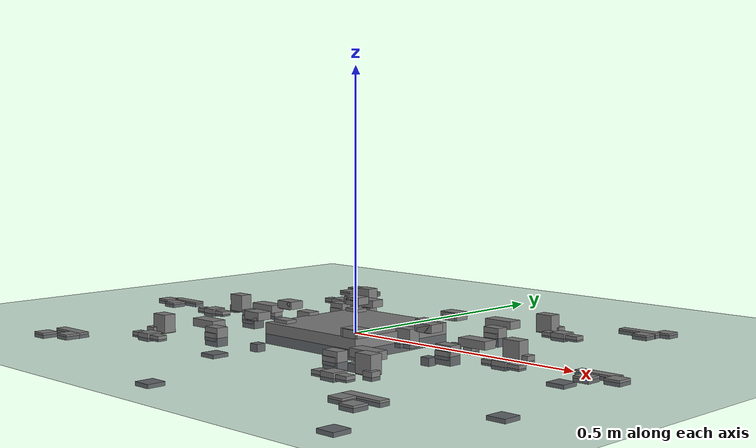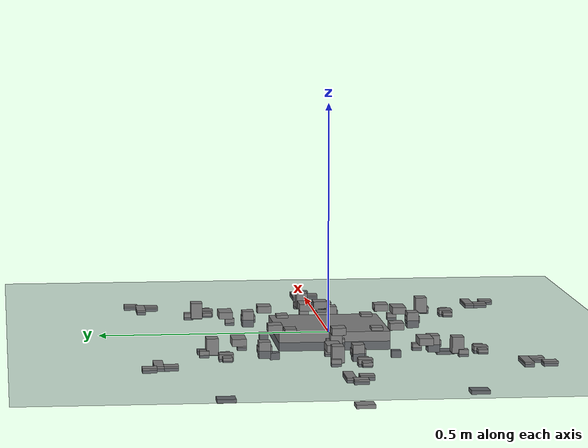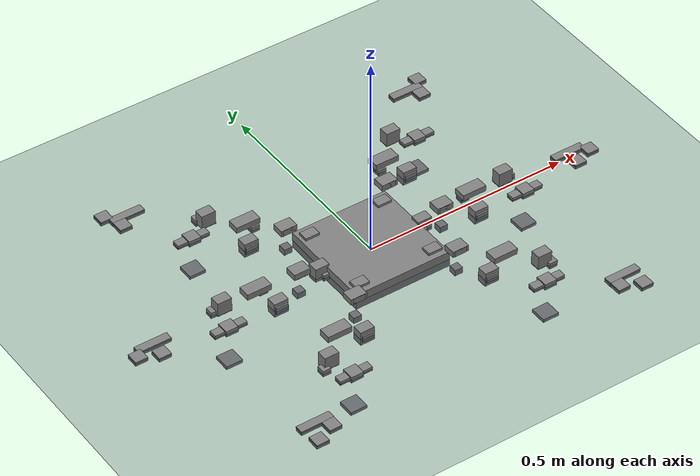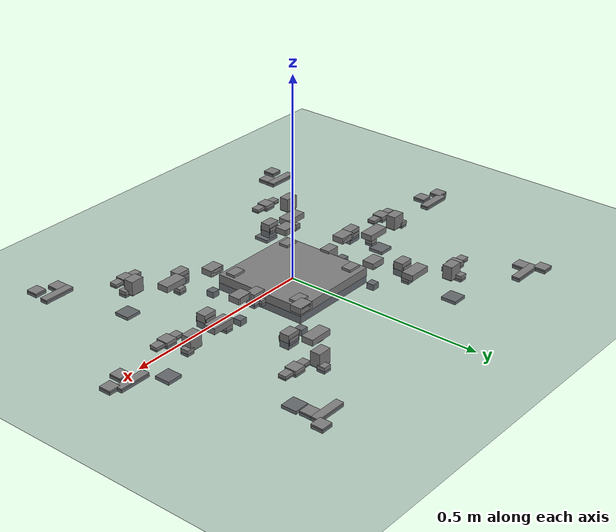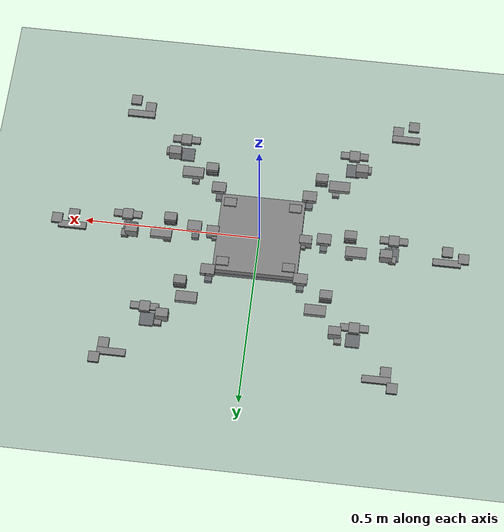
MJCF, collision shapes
<mujoco model="hexapedal_direct">
  <compiler angle="radian" autolimits="true" meshdir="../../../../../../HEXAPEDAL_URDF_description/meshes"/>
  <option timestep="0.008333333333333333" gravity="0 0 -9.81"/>
  <default>
    <default class="visual">
      <geom group="1" rgba="0.7 0.7 0.7 1" contype="0" conaffinity="0"/>
    </default>
    <default class="collision">
      <geom group="0" contype="1" conaffinity="0" friction="1 0.02 0.002" solref="0.005 1" solimp="0.9 0.95 0.001"/>
    </default>
  </default>
  <asset>
    <mesh name="LB_DS51150_270_1_1" file="LB_DS51150_270_1_1.stl" scale="0.001 0.001 0.001"/>
    <mesh name="LB_DS51150_270_2_1" file="LB_DS51150_270_2_1.stl" scale="0.001 0.001 0.001"/>
    <mesh name="LB_DS51150_270_3_1" file="LB_DS51150_270_3_1.stl" scale="0.001 0.001 0.001"/>
    <mesh name="LB_bearing_1_1" file="LB_bearing_1_1.stl" scale="0.001 0.001 0.001"/>
    <mesh name="LB_bearing_2_1" file="LB_bearing_2_1.stl" scale="0.001 0.001 0.001"/>
    <mesh name="LB_bearing_3_1" file="LB_bearing_3_1.stl" scale="0.001 0.001 0.001"/>
    <mesh name="LB_coxaL_1" file="LB_coxaL_1.stl" scale="0.001 0.001 0.001"/>
    <mesh name="LB_flame4_1" file="LB_flame4_1.stl" scale="0.001 0.001 0.001"/>
    <mesh name="LB_foot_1" file="LB_foot_1.stl" scale="0.001 0.001 0.001"/>
    <mesh name="LB_foot_cover_1" file="LB_foot_cover_1.stl" scale="0.001 0.001 0.001"/>
    <mesh name="LB_link1_left_1" file="LB_link1_left_1.stl" scale="0.001 0.001 0.001"/>
    <mesh name="LB_link2_L_back_1" file="LB_link2_L_back_1.stl" scale="0.001 0.001 0.001"/>
    <mesh name="LB_link2_L_front_1" file="LB_link2_L_front_1.stl" scale="0.001 0.001 0.001"/>
    <mesh name="LB_motor_horn_1_1" file="LB_motor_horn_1_1.stl" scale="0.001 0.001 0.001"/>
    <mesh name="LB_motor_horn_2_1" file="LB_motor_horn_2_1.stl" scale="0.001 0.001 0.001"/>
    <mesh name="LB_motor_horn_3_1" file="LB_motor_horn_3_1.stl" scale="0.001 0.001 0.001"/>
    <mesh name="LF_DS51150_270_1_1" file="LF_DS51150_270_1_1.stl" scale="0.001 0.001 0.001"/>
    <mesh name="LF_DS51150_270_2_1" file="LF_DS51150_270_2_1.stl" scale="0.001 0.001 0.001"/>
    <mesh name="LF_DS51150_270_3_1" file="LF_DS51150_270_3_1.stl" scale="0.001 0.001 0.001"/>
    <mesh name="LF_bearing_1_1" file="LF_bearing_1_1.stl" scale="0.001 0.001 0.001"/>
    <mesh name="LF_bearing_2_1" file="LF_bearing_2_1.stl" scale="0.001 0.001 0.001"/>
    <mesh name="LF_bearing_3_1" file="LF_bearing_3_1.stl" scale="0.001 0.001 0.001"/>
    <mesh name="LF_coxaL_1" file="LF_coxaL_1.stl" scale="0.001 0.001 0.001"/>
    <mesh name="LF_flame4_1" file="LF_flame4_1.stl" scale="0.001 0.001 0.001"/>
    <mesh name="LF_foot_1" file="LF_foot_1.stl" scale="0.001 0.001 0.001"/>
    <mesh name="LF_foot_cover_1" file="LF_foot_cover_1.stl" scale="0.001 0.001 0.001"/>
    <mesh name="LF_link1_left_1" file="LF_link1_left_1.stl" scale="0.001 0.001 0.001"/>
    <mesh name="LF_link2_L_back_1" file="LF_link2_L_back_1.stl" scale="0.001 0.001 0.001"/>
    <mesh name="LF_link2_L_front_1" file="LF_link2_L_front_1.stl" scale="0.001 0.001 0.001"/>
    <mesh name="LF_motor_horn_1_1" file="LF_motor_horn_1_1.stl" scale="0.001 0.001 0.001"/>
    <mesh name="LF_motor_horn_2_1" file="LF_motor_horn_2_1.stl" scale="0.001 0.001 0.001"/>
    <mesh name="LF_motor_horn_3_1" file="LF_motor_horn_3_1.stl" scale="0.001 0.001 0.001"/>
    <mesh name="LM_DS51150_270_1_1" file="LM_DS51150_270_1_1.stl" scale="0.001 0.001 0.001"/>
    <mesh name="LM_DS51150_270_2_1" file="LM_DS51150_270_2_1.stl" scale="0.001 0.001 0.001"/>
    <mesh name="LM_DS51150_270_3_1" file="LM_DS51150_270_3_1.stl" scale="0.001 0.001 0.001"/>
    <mesh name="LM_bearing_1_1" file="LM_bearing_1_1.stl" scale="0.001 0.001 0.001"/>
    <mesh name="LM_bearing_2_1" file="LM_bearing_2_1.stl" scale="0.001 0.001 0.001"/>
    <mesh name="LM_bearing_3_1" file="LM_bearing_3_1.stl" scale="0.001 0.001 0.001"/>
    <mesh name="LM_coxaL_1" file="LM_coxaL_1.stl" scale="0.001 0.001 0.001"/>
    <mesh name="LM_flame4_1" file="LM_flame4_1.stl" scale="0.001 0.001 0.001"/>
    <mesh name="LM_foot_1" file="LM_foot_1.stl" scale="0.001 0.001 0.001"/>
    <mesh name="LM_foot_cover_1" file="LM_foot_cover_1.stl" scale="0.001 0.001 0.001"/>
    <mesh name="LM_link1_left_1" file="LM_link1_left_1.stl" scale="0.001 0.001 0.001"/>
    <mesh name="LM_link2_L_back_1" file="LM_link2_L_back_1.stl" scale="0.001 0.001 0.001"/>
    <mesh name="LM_link2_L_front_1" file="LM_link2_L_front_1.stl" scale="0.001 0.001 0.001"/>
    <mesh name="LM_motor_horn_1_1" file="LM_motor_horn_1_1.stl" scale="0.001 0.001 0.001"/>
    <mesh name="LM_motor_horn_2_1" file="LM_motor_horn_2_1.stl" scale="0.001 0.001 0.001"/>
    <mesh name="LM_motor_horn_3_1" file="LM_motor_horn_3_1.stl" scale="0.001 0.001 0.001"/>
    <mesh name="RB_DS51150_270_1_1" file="RB_DS51150_270_1_1.stl" scale="0.001 0.001 0.001"/>
    <mesh name="RB_DS51150_270_2_1" file="RB_DS51150_270_2_1.stl" scale="0.001 0.001 0.001"/>
    <mesh name="RB_DS51150_270_3_1" file="RB_DS51150_270_3_1.stl" scale="0.001 0.001 0.001"/>
    <mesh name="RB_bearing_1_1" file="RB_bearing_1_1.stl" scale="0.001 0.001 0.001"/>
    <mesh name="RB_bearing_2_1" file="RB_bearing_2_1.stl" scale="0.001 0.001 0.001"/>
    <mesh name="RB_bearing_3_1" file="RB_bearing_3_1.stl" scale="0.001 0.001 0.001"/>
    <mesh name="RB_coxaR_1" file="RB_coxaR_1.stl" scale="0.001 0.001 0.001"/>
    <mesh name="RB_flame4_1" file="RB_flame4_1.stl" scale="0.001 0.001 0.001"/>
    <mesh name="RB_foot_1" file="RB_foot_1.stl" scale="0.001 0.001 0.001"/>
    <mesh name="RB_foot_cover_1" file="RB_foot_cover_1.stl" scale="0.001 0.001 0.001"/>
    <mesh name="RB_link1_right_1" file="RB_link1_right_1.stl" scale="0.001 0.001 0.001"/>
    <mesh name="RB_link2_R_back_1" file="RB_link2_R_back_1.stl" scale="0.001 0.001 0.001"/>
    <mesh name="RB_link2_R_front_1" file="RB_link2_R_front_1.stl" scale="0.001 0.001 0.001"/>
    <mesh name="RB_motor_horn_1_1" file="RB_motor_horn_1_1.stl" scale="0.001 0.001 0.001"/>
    <mesh name="RB_motor_horn_2_1" file="RB_motor_horn_2_1.stl" scale="0.001 0.001 0.001"/>
    <mesh name="RB_motor_horn_3_1" file="RB_motor_horn_3_1.stl" scale="0.001 0.001 0.001"/>
    <mesh name="RF_DS51150_270_1_1" file="RF_DS51150_270_1_1.stl" scale="0.001 0.001 0.001"/>
    <mesh name="RF_DS51150_270_2_1" file="RF_DS51150_270_2_1.stl" scale="0.001 0.001 0.001"/>
    <mesh name="RF_DS51150_270_3_1" file="RF_DS51150_270_3_1.stl" scale="0.001 0.001 0.001"/>
    <mesh name="RF_bearing_1_1" file="RF_bearing_1_1.stl" scale="0.001 0.001 0.001"/>
    <mesh name="RF_bearing_2_1" file="RF_bearing_2_1.stl" scale="0.001 0.001 0.001"/>
    <mesh name="RF_bearing_3_1" file="RF_bearing_3_1.stl" scale="0.001 0.001 0.001"/>
    <mesh name="RF_coxaR_1" file="RF_coxaR_1.stl" scale="0.001 0.001 0.001"/>
    <mesh name="RF_flame4_1" file="RF_flame4_1.stl" scale="0.001 0.001 0.001"/>
    <mesh name="RF_foot_1" file="RF_foot_1.stl" scale="0.001 0.001 0.001"/>
    <mesh name="RF_foot_cover_1" file="RF_foot_cover_1.stl" scale="0.001 0.001 0.001"/>
    <mesh name="RF_link1_right_1" file="RF_link1_right_1.stl" scale="0.001 0.001 0.001"/>
    <mesh name="RF_link2_R_back_1" file="RF_link2_R_back_1.stl" scale="0.001 0.001 0.001"/>
    <mesh name="RF_link2_R_front_1" file="RF_link2_R_front_1.stl" scale="0.001 0.001 0.001"/>
    <mesh name="RF_motor_horn_1_1" file="RF_motor_horn_1_1.stl" scale="0.001 0.001 0.001"/>
    <mesh name="RF_motor_horn_2_1" file="RF_motor_horn_2_1.stl" scale="0.001 0.001 0.001"/>
    <mesh name="RF_motor_horn_3_1" file="RF_motor_horn_3_1.stl" scale="0.001 0.001 0.001"/>
    <mesh name="RM_DS51150_270_1_1" file="RM_DS51150_270_1_1.stl" scale="0.001 0.001 0.001"/>
    <mesh name="RM_DS51150_270_2_1" file="RM_DS51150_270_2_1.stl" scale="0.001 0.001 0.001"/>
    <mesh name="RM_DS51150_270_3_1" file="RM_DS51150_270_3_1.stl" scale="0.001 0.001 0.001"/>
    <mesh name="RM_bearing_1_1" file="RM_bearing_1_1.stl" scale="0.001 0.001 0.001"/>
    <mesh name="RM_bearing_2_1" file="RM_bearing_2_1.stl" scale="0.001 0.001 0.001"/>
    <mesh name="RM_bearing_3_1" file="RM_bearing_3_1.stl" scale="0.001 0.001 0.001"/>
    <mesh name="RM_coxaR_1" file="RM_coxaR_1.stl" scale="0.001 0.001 0.001"/>
    <mesh name="RM_flame4_1" file="RM_flame4_1.stl" scale="0.001 0.001 0.001"/>
    <mesh name="RM_foot_1" file="RM_foot_1.stl" scale="0.001 0.001 0.001"/>
    <mesh name="RM_foot_cover_1" file="RM_foot_cover_1.stl" scale="0.001 0.001 0.001"/>
    <mesh name="RM_link1_right_1" file="RM_link1_right_1.stl" scale="0.001 0.001 0.001"/>
    <mesh name="RM_link2_R_back_1" file="RM_link2_R_back_1.stl" scale="0.001 0.001 0.001"/>
    <mesh name="RM_link2_R_front_1" file="RM_link2_R_front_1.stl" scale="0.001 0.001 0.001"/>
    <mesh name="RM_motor_horn_1_1" file="RM_motor_horn_1_1.stl" scale="0.001 0.001 0.001"/>
    <mesh name="RM_motor_horn_2_1" file="RM_motor_horn_2_1.stl" scale="0.001 0.001 0.001"/>
    <mesh name="RM_motor_horn_3_1" file="RM_motor_horn_3_1.stl" scale="0.001 0.001 0.001"/>
    <mesh name="base_link" file="base_link.stl" scale="0.001 0.001 0.001"/>
  </asset>
  <worldbody>
    <geom name="ground" type="plane" size="5 5 0.1" pos="0 0 0" rgba="0.2 0.25 0.3 1" contype="0" conaffinity="1" friction="1 0.02 0.002"/>
    <body name="base_link">
      <freejoint name="base_freejoint"/>
      <inertial pos="-0.000718538520775 -0.00160985665191 -0.00905082819163" mass="3.73732395734" fullinertia="0.0206092447058 0.0334168391593 0.049450959874 4.26368750144e-05 -2.5241949875e-05 -0.000248451211296"/>
      <geom name="base_link_visual_0" pos="0 0 0" quat="1 0 0 0" class="visual" contype="0" conaffinity="0" user="0 0 0 0" type="mesh" mesh="base_link"/>
      <geom name="RB_flame4_1_visual_0" pos="0 0 0" quat="1 0 0 0" class="visual" contype="0" conaffinity="0" user="0 0 0 0" type="mesh" mesh="RB_flame4_1"/>
      <geom name="RM_flame4_1_visual_0" pos="0 0 0" quat="1 0 0 0" class="visual" contype="0" conaffinity="0" user="0 0 0 0" type="mesh" mesh="RM_flame4_1"/>
      <geom name="RF_flame4_1_visual_0" pos="0 0 0" quat="1 0 0 0" class="visual" contype="0" conaffinity="0" user="0 0 0 0" type="mesh" mesh="RF_flame4_1"/>
      <geom name="LB_flame4_1_visual_0" pos="0 0 0" quat="1 0 0 0" class="visual" contype="0" conaffinity="0" user="0 0 0 0" type="mesh" mesh="LB_flame4_1"/>
      <geom name="LM_flame4_1_visual_0" pos="0 0 0" quat="1 0 0 0" class="visual" contype="0" conaffinity="0" user="0 0 0 0" type="mesh" mesh="LM_flame4_1"/>
      <geom name="LF_flame4_1_visual_0" pos="0 0 0" quat="1 0 0 0" class="visual" contype="0" conaffinity="0" user="0 0 0 0" type="mesh" mesh="LF_flame4_1"/>
      <geom name="RF_DS51150_270_1_1_visual_0" pos="0 0 0" quat="1 0 0 0" class="visual" contype="0" conaffinity="0" user="0 0 0 0" type="mesh" mesh="RF_DS51150_270_1_1"/>
      <geom name="RM_DS51150_270_1_1_visual_0" pos="0 0 0" quat="1 0 0 0" class="visual" contype="0" conaffinity="0" user="0 0 0 0" type="mesh" mesh="RM_DS51150_270_1_1"/>
      <geom name="RB_DS51150_270_1_1_visual_0" pos="0 0 0" quat="1 0 0 0" class="visual" contype="0" conaffinity="0" user="0 0 0 0" type="mesh" mesh="RB_DS51150_270_1_1"/>
      <geom name="LF_DS51150_270_1_1_visual_0" pos="0 0 0" quat="1 0 0 0" class="visual" contype="0" conaffinity="0" user="0 0 0 0" type="mesh" mesh="LF_DS51150_270_1_1"/>
      <geom name="LM_DS51150_270_1_1_visual_0" pos="0 0 0" quat="1 0 0 0" class="visual" contype="0" conaffinity="0" user="0 0 0 0" type="mesh" mesh="LM_DS51150_270_1_1"/>
      <geom name="LB_DS51150_270_1_1_visual_0" pos="0 0 0" quat="1 0 0 0" class="visual" contype="0" conaffinity="0" user="0 0 0 0" type="mesh" mesh="LB_DS51150_270_1_1"/>
      <geom name="RF_bearing_1_1_visual_0" pos="0 0 0" quat="1 0 0 0" class="visual" contype="0" conaffinity="0" user="0 0 0 0" type="mesh" mesh="RF_bearing_1_1"/>
      <geom name="RM_bearing_1_1_visual_0" pos="0 0 0" quat="1 0 0 0" class="visual" contype="0" conaffinity="0" user="0 0 0 0" type="mesh" mesh="RM_bearing_1_1"/>
      <geom name="RB_bearing_1_1_visual_0" pos="0 0 0" quat="1 0 0 0" class="visual" contype="0" conaffinity="0" user="0 0 0 0" type="mesh" mesh="RB_bearing_1_1"/>
      <geom name="LF_bearing_1_1_visual_0" pos="0 0 0" quat="1 0 0 0" class="visual" contype="0" conaffinity="0" user="0 0 0 0" type="mesh" mesh="LF_bearing_1_1"/>
      <geom name="LM_bearing_1_1_visual_0" pos="0 0 0" quat="1 0 0 0" class="visual" contype="0" conaffinity="0" user="0 0 0 0" type="mesh" mesh="LM_bearing_1_1"/>
      <geom name="LB_bearing_1_1_visual_0" pos="0 0 0" quat="1 0 0 0" class="visual" contype="0" conaffinity="0" user="0 0 0 0" type="mesh" mesh="LB_bearing_1_1"/>
      <geom name="base_link_collision_0" pos="0 0 0" quat="1 0 0 0" class="collision" user="0 0 0 0" type="box" size="0.12 0.12 0.02"/>
      <geom name="RB_flame4_1_collision_0" pos="-0.08061 0.08061 -0.0008" quat="1 0 0 0" class="collision" user="0 0 0 0" type="box" size="0.02 0.02 0.0075"/>
      <geom name="RM_flame4_1_collision_0" pos="-0.114 0 -0.0008" quat="1 0 0 0" class="collision" user="0 0 0 0" type="box" size="0.02 0.02 0.0075"/>
      <geom name="RF_flame4_1_collision_0" pos="-0.08061 -0.08061 -0.0008" quat="1 0 0 0" class="collision" user="0 0 0 0" type="box" size="0.02 0.02 0.0075"/>
      <geom name="LB_flame4_1_collision_0" pos="0.08061 0.08061 -0.0008" quat="1 0 0 0" class="collision" user="0 0 0 0" type="box" size="0.02 0.02 0.0075"/>
      <geom name="LM_flame4_1_collision_0" pos="0.114 0 -0.0008" quat="1 0 0 0" class="collision" user="0 0 0 0" type="box" size="0.02 0.02 0.0075"/>
      <geom name="LF_flame4_1_collision_0" pos="0.08061 -0.08061 -0.0008" quat="1 0 0 0" class="collision" user="0 0 0 0" type="box" size="0.02 0.02 0.0075"/>
      <geom name="RF_DS51150_270_1_1_collision_0" pos="-0.093692 -0.093692 0.0087" quat="1 0 0 0" class="collision" user="0 0 0 0" type="box" size="0.0175 0.0125 0.0175"/>
      <geom name="RM_DS51150_270_1_1_collision_0" pos="-0.1325 0 0.0087" quat="1 0 0 0" class="collision" user="0 0 0 0" type="box" size="0.0175 0.0125 0.0175"/>
      <geom name="RB_DS51150_270_1_1_collision_0" pos="-0.093692 0.093692 0.0087" quat="1 0 0 0" class="collision" user="0 0 0 0" type="box" size="0.0175 0.0125 0.0175"/>
      <geom name="LF_DS51150_270_1_1_collision_0" pos="0.093692 -0.093692 0.0087" quat="1 0 0 0" class="collision" user="0 0 0 0" type="box" size="0.0175 0.0125 0.0175"/>
      <geom name="LM_DS51150_270_1_1_collision_0" pos="0.1325 0 0.0087" quat="1 0 0 0" class="collision" user="0 0 0 0" type="box" size="0.0175 0.0125 0.0175"/>
      <geom name="LB_DS51150_270_1_1_collision_0" pos="0.093692 0.093692 0.0087" quat="1 0 0 0" class="collision" user="0 0 0 0" type="box" size="0.0175 0.0125 0.0175"/>
      <geom name="RF_bearing_1_1_collision_0" pos="-0.130461 -0.130461 -0.0273" quat="1 0 0 0" class="collision" user="0 0 0 0" type="box" size="0.01 0.01 0.0075"/>
      <geom name="RM_bearing_1_1_collision_0" pos="-0.1845 0 -0.0273" quat="1 0 0 0" class="collision" user="0 0 0 0" type="box" size="0.01 0.01 0.0075"/>
      <geom name="RB_bearing_1_1_collision_0" pos="-0.130461 0.130461 -0.0273" quat="1 0 0 0" class="collision" user="0 0 0 0" type="box" size="0.01 0.01 0.0075"/>
      <geom name="LF_bearing_1_1_collision_0" pos="0.130461 -0.130461 -0.0273" quat="1 0 0 0" class="collision" user="0 0 0 0" type="box" size="0.01 0.01 0.0075"/>
      <geom name="LM_bearing_1_1_collision_0" pos="0.1845 0 -0.0273" quat="1 0 0 0" class="collision" user="0 0 0 0" type="box" size="0.01 0.01 0.0075"/>
      <geom name="LB_bearing_1_1_collision_0" pos="0.130461 0.130461 -0.0273" quat="1 0 0 0" class="collision" user="0 0 0 0" type="box" size="0.01 0.01 0.0075"/>
      <body name="LF_motor_horn_1_1" pos="0.130461 -0.130461 0.0329" quat="1 0 0 0">
        <joint name="LF_motor_horn_1_joint" type="hinge" pos="0 0 0" axis="0 0 1" range="-2.356194 2.356194" damping="4"/>
        <inertial pos="0.0260163309548 -0.026309974271 -0.0326923635108" mass="0.0976609194815" fullinertia="0.000122658968933 0.000121229345123 0.000133279116024 1.08349590809e-05 5.74959366541e-07 -5.5725781057e-07"/>
        <geom name="LF_motor_horn_1_1_visual_0" pos="-0.130461 0.130461 -0.0329" quat="1 0 0 0" class="visual" contype="0" conaffinity="0" user="0 0 0 0" type="mesh" mesh="LF_motor_horn_1_1"/>
        <geom name="LF_coxaL_1_visual_0" pos="-0.130461 0.130461 -0.0329" quat="1 0 0 0" class="visual" contype="0" conaffinity="0" user="0 0 0 0" type="mesh" mesh="LF_coxaL_1"/>
        <geom name="LF_motor_horn_2_1_visual_0" pos="-0.130461 0.130461 -0.0329" quat="1 0 0 0" class="visual" contype="0" conaffinity="0" user="0 0 0 0" type="mesh" mesh="LF_motor_horn_2_1"/>
        <geom name="LF_motor_horn_1_1_collision_0" pos="0 0 0" quat="1 0 0 0" class="collision" user="0 0 0 0" type="box" size="0.015 0.015 0.0075"/>
        <geom name="LF_coxaL_1_collision_0" pos="0 0 0.0009" quat="1 0 0 0" class="collision" user="0 0 0 0" type="box" size="0.02 0.015 0.0075"/>
        <geom name="LF_motor_horn_2_1_collision_0" pos="0.028426 -0.076226 -0.0329" quat="1 0 0 0" class="collision" user="0 0 0 0" type="box" size="0.015 0.015 0.0075"/>
        <body name="LF_DS51150_270_2_1" pos="0.029062 -0.07559 -0.0329" quat="1 0 0 0">
          <joint name="LF_motor_horn_2_joint" type="hinge" pos="0 0 0" axis="0.707107 0.707107 0" range="-2.356194 2.356194" damping="4"/>
          <inertial pos="0.0674972028066 -0.020216950011 -8.19104568374e-05" mass="0.390433459243" fullinertia="0.000501369998707 0.000501853582839 0.000935189860172 0.000381188642323 -7.4412909612e-07 -7.43970256454e-07"/>
          <geom name="LF_DS51150_270_2_1_visual_0" pos="-0.159523 0.206051 0" quat="1 0 0 0" class="visual" contype="0" conaffinity="0" user="0 0 0 0" type="mesh" mesh="LF_DS51150_270_2_1"/>
          <geom name="LF_link1_left_1_visual_0" pos="-0.159523 0.206051 0" quat="1 0 0 0" class="visual" contype="0" conaffinity="0" user="0 0 0 0" type="mesh" mesh="LF_link1_left_1"/>
          <geom name="LF_DS51150_270_3_1_visual_0" pos="-0.159523 0.206051 0" quat="1 0 0 0" class="visual" contype="0" conaffinity="0" user="0 0 0 0" type="mesh" mesh="LF_DS51150_270_3_1"/>
          <geom name="LF_bearing_2_1_visual_0" pos="-0.159523 0.206051 0" quat="1 0 0 0" class="visual" contype="0" conaffinity="0" user="0 0 0 0" type="mesh" mesh="LF_bearing_2_1"/>
          <geom name="LF_bearing_3_1_visual_0" pos="-0.159523 0.206051 0" quat="1 0 0 0" class="visual" contype="0" conaffinity="0" user="0 0 0 0" type="mesh" mesh="LF_bearing_3_1"/>
          <geom name="LF_DS51150_270_2_1_collision_0" pos="0 0 0" quat="1 0 0 0" class="collision" user="0 0 0 0" type="box" size="0.0175 0.0125 0.0175"/>
          <geom name="LF_link1_left_1_collision_0" pos="0.052821 0.025244 0.015" quat="1 0 0 0" class="collision" user="0 0 0 0" type="box" size="0.03 0.015 0.0075"/>
          <geom name="LF_DS51150_270_3_1_collision_0" pos="0.112925 -0.03486 0.015" quat="1 0 0 0" class="collision" user="0 0 0 0" type="box" size="0.0175 0.0125 0.0175"/>
          <geom name="LF_bearing_2_1_collision_0" pos="0.043982 0.041154 0" quat="1 0 0 0" class="collision" user="0 0 0 0" type="box" size="0.01 0.01 0.0075"/>
          <geom name="LF_bearing_3_1_collision_0" pos="0.130249 -0.045113 0" quat="1 0 0 0" class="collision" user="0 0 0 0" type="box" size="0.01 0.01 0.0075"/>
          <body name="LF_motor_horn_3_1" pos="0.087682 -0.087681 0" quat="1 0 0 0">
            <joint name="LF_motor_horn_3_joint" type="hinge" pos="0 0 0" axis="-0.707107 -0.707107 0" range="-2.356194 2.356194" damping="4"/>
            <inertial pos="0.103357682294 -0.0572709357978 -0.00176243363339" mass="0.12783362378" fullinertia="0.000327801385847 0.000333883441315 0.000620247670026 0.000253565814459 7.99685260537e-06 -7.91898329471e-06"/>
            <geom name="LF_motor_horn_3_1_visual_0" pos="-0.247205 0.293732 0" quat="1 0 0 0" class="visual" contype="0" conaffinity="0" user="0 0 0 0" type="mesh" mesh="LF_motor_horn_3_1"/>
            <geom name="LF_link2_L_front_1_visual_0" pos="-0.247205 0.293732 0" quat="1 0 0 0" class="visual" contype="0" conaffinity="0" user="0 0 0 0" type="mesh" mesh="LF_link2_L_front_1"/>
            <geom name="LF_foot_1_visual_0" pos="-0.247205 0.293732 0" quat="1 0 0 0" class="visual" contype="0" conaffinity="0" user="0 0 0 0" type="mesh" mesh="LF_foot_1"/>
            <geom name="LF_foot_cover_1_visual_0" pos="-0.247205 0.293732 0" quat="1 0 0 0" class="visual" contype="0" conaffinity="0" user="0 0 0 0" type="mesh" mesh="LF_foot_cover_1"/>
            <geom name="LF_link2_L_back_1_visual_0" pos="-0.247205 0.293732 0" quat="1 0 0 0" class="visual" contype="0" conaffinity="0" user="0 0 0 0" type="mesh" mesh="LF_link2_L_back_1"/>
            <geom name="LF_motor_horn_3_1_collision_0" pos="0 0 0" quat="1 0 0 0" class="collision" user="0 0 0 0" type="box" size="0.015 0.015 0.0075"/>
            <geom name="LF_link2_L_front_1_collision_0" pos="-0.000637 -0.000637 0" quat="1 0 0 0" class="collision" user="0 0 0 0" type="box" size="0.04 0.01 0.005"/>
            <geom name="LF_foot_1_collision_0" pos="0.120084 -0.097987 -0.003" quat="1 0 0 0" class="collision" user="0 0 0 0" type="box" size="0.015 0.015 0.005"/>
            <geom name="LF_foot_cover_1_collision_0" pos="0.165187 -0.11866 -0.003" quat="1 0 0 0" class="collision" user="0 0 0 0" type="box" size="0.015 0.015 0.005"/>
            <geom name="LF_link2_L_back_1_collision_0" pos="0.144486 -0.073523 -0.003" quat="1 0 0 0" class="collision" user="0 0 0 0" type="box" size="0.04 0.01 0.005"/>
            <site name="LF_motor_horn_3_1_contact_site" pos="0 0 0" quat="1 0 0 0" type="sphere" size="0.003" rgba="0 1 0 1"/>
            <geom name="LF_motor_horn_3_1_stance_pad" pos="0 0 -0.09" quat="1 0 0 0" class="collision" user="0 0 0 0" type="box" size="0.02 0.02 0.004"/>
          </body>
        </body>
      </body>
      <body name="LM_motor_horn_1_1" pos="0.1845 0 0.0329" quat="1 0 0 0">
        <joint name="LM_motor_horn_1_joint" type="hinge" pos="0 0 0" axis="0 0 1" range="-2.356194 2.356194" damping="4"/>
        <inertial pos="0.0370000008203 -0.000207637180164 -0.0326923635108" mass="0.0976609194815" fullinertia="0.000111609197947 0.000133279116109 0.000133279116024 1.2148119051e-06 1.21481200608e-06 1.25168902646e-08"/>
        <geom name="LM_motor_horn_1_1_visual_0" pos="-0.1845 0 -0.0329" quat="1 0 0 0" class="visual" contype="0" conaffinity="0" user="0 0 0 0" type="mesh" mesh="LM_motor_horn_1_1"/>
        <geom name="LM_coxaL_1_visual_0" pos="-0.1845 0 -0.0329" quat="1 0 0 0" class="visual" contype="0" conaffinity="0" user="0 0 0 0" type="mesh" mesh="LM_coxaL_1"/>
        <geom name="LM_motor_horn_2_1_visual_0" pos="-0.1845 0 -0.0329" quat="1 0 0 0" class="visual" contype="0" conaffinity="0" user="0 0 0 0" type="mesh" mesh="LM_motor_horn_2_1"/>
        <geom name="LM_motor_horn_1_1_collision_0" pos="0 0 0" quat="1 0 0 0" class="collision" user="0 0 0 0" type="box" size="0.015 0.015 0.0075"/>
        <geom name="LM_coxaL_1_collision_0" pos="0 0 0.0009" quat="1 0 0 0" class="collision" user="0 0 0 0" type="box" size="0.02 0.015 0.0075"/>
        <geom name="LM_motor_horn_2_1_collision_0" pos="0.074 -0.0338 -0.0329" quat="1 0 0 0" class="collision" user="0 0 0 0" type="box" size="0.015 0.015 0.0075"/>
        <body name="LM_DS51150_270_2_1" pos="0.074 -0.0329 -0.0329" quat="1 0 0 0">
          <joint name="LM_motor_horn_2_joint" type="hinge" pos="0 0 0" axis="0 1 0" range="-2.356194 2.356194" damping="4"/>
          <inertial pos="0.0620231266888 0.0334319230529 -8.19104568388e-05" mass="0.390433459243" fullinertia="0.00012142314845 0.000881800433096 0.000935189860172 -2.41792066175e-07 -1.12316610394e-10 -6.38031580911e-07"/>
          <geom name="LM_DS51150_270_2_1_visual_0" pos="-0.2585 0.0329 0" quat="1 0 0 0" class="visual" contype="0" conaffinity="0" user="0 0 0 0" type="mesh" mesh="LM_DS51150_270_2_1"/>
          <geom name="LM_link1_left_1_visual_0" pos="-0.2585 0.0329 0" quat="1 0 0 0" class="visual" contype="0" conaffinity="0" user="0 0 0 0" type="mesh" mesh="LM_link1_left_1"/>
          <geom name="LM_DS51150_270_3_1_visual_0" pos="-0.2585 0.0329 0" quat="1 0 0 0" class="visual" contype="0" conaffinity="0" user="0 0 0 0" type="mesh" mesh="LM_DS51150_270_3_1"/>
          <geom name="LM_bearing_2_1_visual_0" pos="-0.2585 0.0329 0" quat="1 0 0 0" class="visual" contype="0" conaffinity="0" user="0 0 0 0" type="mesh" mesh="LM_bearing_2_1"/>
          <geom name="LM_bearing_3_1_visual_0" pos="-0.2585 0.0329 0" quat="1 0 0 0" class="visual" contype="0" conaffinity="0" user="0 0 0 0" type="mesh" mesh="LM_bearing_3_1"/>
          <geom name="LM_DS51150_270_2_1_collision_0" pos="0 0 0" quat="1 0 0 0" class="collision" user="0 0 0 0" type="box" size="0.0175 0.0125 0.0175"/>
          <geom name="LM_link1_left_1_collision_0" pos="0.0195 0.0552 0.015" quat="1 0 0 0" class="collision" user="0 0 0 0" type="box" size="0.03 0.015 0.0075"/>
          <geom name="LM_DS51150_270_3_1_collision_0" pos="0.1045 0.0552 0.015" quat="1 0 0 0" class="collision" user="0 0 0 0" type="box" size="0.0175 0.0125 0.0175"/>
          <geom name="LM_bearing_2_1_collision_0" pos="0.002 0.0602 0" quat="1 0 0 0" class="collision" user="0 0 0 0" type="box" size="0.01 0.01 0.0075"/>
          <geom name="LM_bearing_3_1_collision_0" pos="0.124 0.0602 0" quat="1 0 0 0" class="collision" user="0 0 0 0" type="box" size="0.01 0.01 0.0075"/>
          <body name="LM_motor_horn_3_1" pos="0.124 0 0" quat="1 0 0 0">
            <joint name="LM_motor_horn_3_joint" type="hinge" pos="0 0 0" axis="0 -1 0" range="-2.356194 2.356194" damping="4"/>
            <inertial pos="0.113581806 0.0325886937623 -0.00170404252062" mass="0.12783362378" fullinertia="7.97577912338e-05 0.000583889420151 0.000620247670026 -2.54102773399e-06 1.21302712496e-05 5.27376210722e-08"/>
            <geom name="LM_motor_horn_3_1_visual_0" pos="-0.3825 0.0329 0" quat="1 0 0 0" class="visual" contype="0" conaffinity="0" user="0 0 0 0" type="mesh" mesh="LM_motor_horn_3_1"/>
            <geom name="LM_link2_L_front_1_visual_0" pos="-0.3825 0.0329 0" quat="1 0 0 0" class="visual" contype="0" conaffinity="0" user="0 0 0 0" type="mesh" mesh="LM_link2_L_front_1"/>
            <geom name="LM_foot_1_visual_0" pos="-0.3825 0.0329 0" quat="1 0 0 0" class="visual" contype="0" conaffinity="0" user="0 0 0 0" type="mesh" mesh="LM_foot_1"/>
            <geom name="LM_foot_cover_1_visual_0" pos="-0.3825 0.0329 0" quat="1 0 0 0" class="visual" contype="0" conaffinity="0" user="0 0 0 0" type="mesh" mesh="LM_foot_cover_1"/>
            <geom name="LM_link2_L_back_1_visual_0" pos="-0.3825 0.0329 0" quat="1 0 0 0" class="visual" contype="0" conaffinity="0" user="0 0 0 0" type="mesh" mesh="LM_link2_L_back_1"/>
            <geom name="LM_motor_horn_3_1_collision_0" pos="0 0 0" quat="1 0 0 0" class="collision" user="0 0 0 0" type="box" size="0.015 0.015 0.0075"/>
            <geom name="LM_link2_L_front_1_collision_0" pos="0 -0.0009 0" quat="1 0 0 0" class="collision" user="0 0 0 0" type="box" size="0.04 0.01 0.005"/>
            <geom name="LM_foot_1_collision_0" pos="0.1542 0.015625 -0.003" quat="1 0 0 0" class="collision" user="0 0 0 0" type="box" size="0.015 0.015 0.005"/>
            <geom name="LM_foot_cover_1_collision_0" pos="0.200711 0.0329 -0.002696" quat="1 0 0 0" class="collision" user="0 0 0 0" type="box" size="0.015 0.015 0.005"/>
            <geom name="LM_link2_L_back_1_collision_0" pos="0.154156 0.050179 -0.003" quat="1 0 0 0" class="collision" user="0 0 0 0" type="box" size="0.04 0.01 0.005"/>
            <site name="LM_motor_horn_3_1_contact_site" pos="0 0 0" quat="1 0 0 0" type="sphere" size="0.003" rgba="0 1 0 1"/>
            <geom name="LM_motor_horn_3_1_stance_pad" pos="0 0 -0.09" quat="1 0 0 0" class="collision" user="0 0 0 0" type="box" size="0.02 0.02 0.004"/>
          </body>
        </body>
      </body>
      <body name="LB_motor_horn_1_1" pos="0.130461 0.130461 0.0329" quat="1 0 0 0">
        <joint name="LB_motor_horn_1_joint" type="hinge" pos="0 0 0" axis="0 0 1" range="-2.356194 2.356194" damping="4"/>
        <inertial pos="0.026309974271 0.0260163309547 -0.0326923635108" mass="0.0976609194815" fullinertia="0.000121229345123 0.000122658968933 0.000133279116024 -1.08349590809e-05 5.5725781057e-07 5.7495936654e-07"/>
        <geom name="LB_motor_horn_1_1_visual_0" pos="-0.130461 -0.130461 -0.0329" quat="1 0 0 0" class="visual" contype="0" conaffinity="0" user="0 0 0 0" type="mesh" mesh="LB_motor_horn_1_1"/>
        <geom name="LB_coxaL_1_visual_0" pos="-0.130461 -0.130461 -0.0329" quat="1 0 0 0" class="visual" contype="0" conaffinity="0" user="0 0 0 0" type="mesh" mesh="LB_coxaL_1"/>
        <geom name="LB_motor_horn_2_1_visual_0" pos="-0.130461 -0.130461 -0.0329" quat="1 0 0 0" class="visual" contype="0" conaffinity="0" user="0 0 0 0" type="mesh" mesh="LB_motor_horn_2_1"/>
        <geom name="LB_motor_horn_1_1_collision_0" pos="0 0 0" quat="1 0 0 0" class="collision" user="0 0 0 0" type="box" size="0.015 0.015 0.0075"/>
        <geom name="LB_coxaL_1_collision_0" pos="0 0 0.0009" quat="1 0 0 0" class="collision" user="0 0 0 0" type="box" size="0.02 0.015 0.0075"/>
        <geom name="LB_motor_horn_2_1_collision_0" pos="0.076226 0.028426 -0.0329" quat="1 0 0 0" class="collision" user="0 0 0 0" type="box" size="0.015 0.015 0.0075"/>
        <body name="LB_DS51150_270_2_1" pos="0.07559 0.029062 -0.0329" quat="1 0 0 0">
          <joint name="LB_motor_horn_2_joint" type="hinge" pos="0 0 0" axis="-0.707107 0.707107 0" range="-2.356194 2.356194" damping="4"/>
          <inertial pos="0.020216950011 0.0674972028066 -8.19104568481e-05" mass="0.390433459243" fullinertia="0.000501853582839 0.000501369998707 0.000935189860172 -0.000381188642323 7.4397025646e-07 -7.44129096113e-07"/>
          <geom name="LB_DS51150_270_2_1_visual_0" pos="-0.206051 -0.159523 0" quat="1 0 0 0" class="visual" contype="0" conaffinity="0" user="0 0 0 0" type="mesh" mesh="LB_DS51150_270_2_1"/>
          <geom name="LB_link1_left_1_visual_0" pos="-0.206051 -0.159523 0" quat="1 0 0 0" class="visual" contype="0" conaffinity="0" user="0 0 0 0" type="mesh" mesh="LB_link1_left_1"/>
          <geom name="LB_DS51150_270_3_1_visual_0" pos="-0.206051 -0.159523 0" quat="1 0 0 0" class="visual" contype="0" conaffinity="0" user="0 0 0 0" type="mesh" mesh="LB_DS51150_270_3_1"/>
          <geom name="LB_bearing_2_1_visual_0" pos="-0.206051 -0.159523 0" quat="1 0 0 0" class="visual" contype="0" conaffinity="0" user="0 0 0 0" type="mesh" mesh="LB_bearing_2_1"/>
          <geom name="LB_bearing_3_1_visual_0" pos="-0.206051 -0.159523 0" quat="1 0 0 0" class="visual" contype="0" conaffinity="0" user="0 0 0 0" type="mesh" mesh="LB_bearing_3_1"/>
          <geom name="LB_DS51150_270_2_1_collision_0" pos="0 0 0" quat="1 0 0 0" class="collision" user="0 0 0 0" type="box" size="0.0175 0.0125 0.0175"/>
          <geom name="LB_link1_left_1_collision_0" pos="-0.025244 0.052821 0.015" quat="1 0 0 0" class="collision" user="0 0 0 0" type="box" size="0.03 0.015 0.0075"/>
          <geom name="LB_DS51150_270_3_1_collision_0" pos="0.03486 0.112925 0.015" quat="1 0 0 0" class="collision" user="0 0 0 0" type="box" size="0.0175 0.0125 0.0175"/>
          <geom name="LB_bearing_2_1_collision_0" pos="-0.041154 0.043982 0" quat="1 0 0 0" class="collision" user="0 0 0 0" type="box" size="0.01 0.01 0.0075"/>
          <geom name="LB_bearing_3_1_collision_0" pos="0.045113 0.130249 0" quat="1 0 0 0" class="collision" user="0 0 0 0" type="box" size="0.01 0.01 0.0075"/>
          <body name="LB_motor_horn_3_1" pos="0.087681 0.087682 0" quat="1 0 0 0">
            <joint name="LB_motor_horn_3_joint" type="hinge" pos="0 0 0" axis="0.707107 -0.707107 0" range="-2.356194 2.356194" damping="4"/>
            <inertial pos="0.0572709357978 0.103357682294 -0.00176243363341" mass="0.12783362378" fullinertia="0.000333883441315 0.000327801385847 0.000620247670026 -0.000253565814459 7.91898329471e-06 7.99685260537e-06"/>
            <geom name="LB_motor_horn_3_1_visual_0" pos="-0.293732 -0.247205 0" quat="1 0 0 0" class="visual" contype="0" conaffinity="0" user="0 0 0 0" type="mesh" mesh="LB_motor_horn_3_1"/>
            <geom name="LB_link2_L_front_1_visual_0" pos="-0.293732 -0.247205 0" quat="1 0 0 0" class="visual" contype="0" conaffinity="0" user="0 0 0 0" type="mesh" mesh="LB_link2_L_front_1"/>
            <geom name="LB_foot_1_visual_0" pos="-0.293732 -0.247205 0" quat="1 0 0 0" class="visual" contype="0" conaffinity="0" user="0 0 0 0" type="mesh" mesh="LB_foot_1"/>
            <geom name="LB_foot_cover_1_visual_0" pos="-0.293732 -0.247205 0" quat="1 0 0 0" class="visual" contype="0" conaffinity="0" user="0 0 0 0" type="mesh" mesh="LB_foot_cover_1"/>
            <geom name="LB_link2_L_back_1_visual_0" pos="-0.293732 -0.247205 0" quat="1 0 0 0" class="visual" contype="0" conaffinity="0" user="0 0 0 0" type="mesh" mesh="LB_link2_L_back_1"/>
            <geom name="LB_motor_horn_3_1_collision_0" pos="0 0 0" quat="1 0 0 0" class="collision" user="0 0 0 0" type="box" size="0.015 0.015 0.0075"/>
            <geom name="LB_link2_L_front_1_collision_0" pos="0.000637 -0.000637 0" quat="1 0 0 0" class="collision" user="0 0 0 0" type="box" size="0.04 0.01 0.005"/>
            <geom name="LB_foot_1_collision_0" pos="0.097987 0.120084 -0.003" quat="1 0 0 0" class="collision" user="0 0 0 0" type="box" size="0.015 0.015 0.005"/>
            <geom name="LB_foot_cover_1_collision_0" pos="0.11866 0.165187 -0.003" quat="1 0 0 0" class="collision" user="0 0 0 0" type="box" size="0.015 0.015 0.005"/>
            <geom name="LB_link2_L_back_1_collision_0" pos="0.073523 0.144486 -0.003" quat="1 0 0 0" class="collision" user="0 0 0 0" type="box" size="0.04 0.01 0.005"/>
            <site name="LB_motor_horn_3_1_contact_site" pos="0 0 0" quat="1 0 0 0" type="sphere" size="0.003" rgba="0 1 0 1"/>
            <geom name="LB_motor_horn_3_1_stance_pad" pos="0 0 -0.09" quat="1 0 0 0" class="collision" user="0 0 0 0" type="box" size="0.02 0.02 0.004"/>
          </body>
        </body>
      </body>
      <body name="RF_motor_horn_1_1" pos="-0.130461 -0.130461 0.0329" quat="1 0 0 0">
        <joint name="RF_motor_horn_1_joint" type="hinge" pos="0 0 0" axis="0 0 1" range="-2.356194 2.356194" damping="4"/>
        <inertial pos="-0.0260163322479 -0.0263099729778 -0.0326923635108" mass="0.0976609194815" fullinertia="0.000122658969046 0.000121229345236 0.000133279116249 -1.08349589683e-05 -5.74959446127e-07 -5.57257731009e-07"/>
        <geom name="RF_motor_horn_1_1_visual_0" pos="0.130461 0.130461 -0.0329" quat="1 0 0 0" class="visual" contype="0" conaffinity="0" user="0 0 0 0" type="mesh" mesh="RF_motor_horn_1_1"/>
        <geom name="RF_coxaR_1_visual_0" pos="0.130461 0.130461 -0.0329" quat="1 0 0 0" class="visual" contype="0" conaffinity="0" user="0 0 0 0" type="mesh" mesh="RF_coxaR_1"/>
        <geom name="RF_motor_horn_2_1_visual_0" pos="0.130461 0.130461 -0.0329" quat="1 0 0 0" class="visual" contype="0" conaffinity="0" user="0 0 0 0" type="mesh" mesh="RF_motor_horn_2_1"/>
        <geom name="RF_motor_horn_1_1_collision_0" pos="0 0 0" quat="1 0 0 0" class="collision" user="0 0 0 0" type="box" size="0.015 0.015 0.0075"/>
        <geom name="RF_coxaR_1_collision_0" pos="0 0 0.0009" quat="1 0 0 0" class="collision" user="0 0 0 0" type="box" size="0.02 0.015 0.0075"/>
        <geom name="RF_motor_horn_2_1_collision_0" pos="-0.028426 -0.076226 -0.0329" quat="1 0 0 0" class="collision" user="0 0 0 0" type="box" size="0.015 0.015 0.0075"/>
        <body name="RF_DS51150_270_2_1" pos="-0.029062 -0.07559 -0.0329" quat="1 0 0 0">
          <joint name="RF_motor_horn_2_joint" type="hinge" pos="0 0 0" axis="-0.707107 0.707107 0" range="-2.356194 2.356194" damping="4"/>
          <inertial pos="-0.0674972028154 -0.0202169500175 -8.19104608878e-05" mass="0.390433459341" fullinertia="0.000501369998662 0.00050185358289 0.000935189860174 -0.000381188642322 7.44129263042e-07 -7.43970064618e-07"/>
          <geom name="RF_DS51150_270_2_1_visual_0" pos="0.159523 0.206051 0" quat="1 0 0 0" class="visual" contype="0" conaffinity="0" user="0 0 0 0" type="mesh" mesh="RF_DS51150_270_2_1"/>
          <geom name="RF_link1_right_1_visual_0" pos="0.159523 0.206051 0" quat="1 0 0 0" class="visual" contype="0" conaffinity="0" user="0 0 0 0" type="mesh" mesh="RF_link1_right_1"/>
          <geom name="RF_DS51150_270_3_1_visual_0" pos="0.159523 0.206051 0" quat="1 0 0 0" class="visual" contype="0" conaffinity="0" user="0 0 0 0" type="mesh" mesh="RF_DS51150_270_3_1"/>
          <geom name="RF_bearing_2_1_visual_0" pos="0.159523 0.206051 0" quat="1 0 0 0" class="visual" contype="0" conaffinity="0" user="0 0 0 0" type="mesh" mesh="RF_bearing_2_1"/>
          <geom name="RF_bearing_3_1_visual_0" pos="0.159523 0.206051 0" quat="1 0 0 0" class="visual" contype="0" conaffinity="0" user="0 0 0 0" type="mesh" mesh="RF_bearing_3_1"/>
          <geom name="RF_DS51150_270_2_1_collision_0" pos="0 0 0" quat="1 0 0 0" class="collision" user="0 0 0 0" type="box" size="0.0175 0.0125 0.0175"/>
          <geom name="RF_link1_right_1_collision_0" pos="-0.052821 0.025244 0.015" quat="1 0 0 0" class="collision" user="0 0 0 0" type="box" size="0.03 0.015 0.0075"/>
          <geom name="RF_DS51150_270_3_1_collision_0" pos="-0.112925 -0.03486 0.015" quat="1 0 0 0" class="collision" user="0 0 0 0" type="box" size="0.0175 0.0125 0.0175"/>
          <geom name="RF_bearing_2_1_collision_0" pos="-0.043982 0.041154 0" quat="1 0 0 0" class="collision" user="0 0 0 0" type="box" size="0.01 0.01 0.0075"/>
          <geom name="RF_bearing_3_1_collision_0" pos="-0.130249 -0.045113 0" quat="1 0 0 0" class="collision" user="0 0 0 0" type="box" size="0.01 0.01 0.0075"/>
          <body name="RF_motor_horn_3_1" pos="-0.087682 -0.087681 0" quat="1 0 0 0">
            <joint name="RF_motor_horn_3_joint" type="hinge" pos="0 0 0" axis="0.707107 -0.707107 0" range="-2.356194 2.356194" damping="4"/>
            <inertial pos="-0.10336118361 -0.0572763951177 -0.00176277738435" mass="0.127833623802" fullinertia="0.000327680812304 0.000333836269934 0.000620079843139 -0.000253490002024 -7.9963343591e-06 -7.91767000457e-06"/>
            <geom name="RF_motor_horn_3_1_visual_0" pos="0.247205 0.293732 0" quat="1 0 0 0" class="visual" contype="0" conaffinity="0" user="0 0 0 0" type="mesh" mesh="RF_motor_horn_3_1"/>
            <geom name="RF_link2_R_front_1_visual_0" pos="0.247205 0.293732 0" quat="1 0 0 0" class="visual" contype="0" conaffinity="0" user="0 0 0 0" type="mesh" mesh="RF_link2_R_front_1"/>
            <geom name="RF_foot_1_visual_0" pos="0.247205 0.293732 0" quat="1 0 0 0" class="visual" contype="0" conaffinity="0" user="0 0 0 0" type="mesh" mesh="RF_foot_1"/>
            <geom name="RF_foot_cover_1_visual_0" pos="0.247205 0.293732 0" quat="1 0 0 0" class="visual" contype="0" conaffinity="0" user="0 0 0 0" type="mesh" mesh="RF_foot_cover_1"/>
            <geom name="RF_link2_R_back_1_visual_0" pos="0.247205 0.293732 0" quat="1 0 0 0" class="visual" contype="0" conaffinity="0" user="0 0 0 0" type="mesh" mesh="RF_link2_R_back_1"/>
            <geom name="RF_motor_horn_3_1_collision_0" pos="0 0 0" quat="1 0 0 0" class="collision" user="0 0 0 0" type="box" size="0.015 0.015 0.0075"/>
            <geom name="RF_link2_R_front_1_collision_0" pos="0.000637 -0.000637 0" quat="1 0 0 0" class="collision" user="0 0 0 0" type="box" size="0.04 0.01 0.005"/>
            <geom name="RF_foot_1_collision_0" pos="-0.120045 -0.097955 -0.003" quat="1 0 0 0" class="collision" user="0 0 0 0" type="box" size="0.015 0.015 0.005"/>
            <geom name="RF_foot_cover_1_collision_0" pos="-0.165183 -0.118656 -0.003" quat="1 0 0 0" class="collision" user="0 0 0 0" type="box" size="0.015 0.015 0.005"/>
            <geom name="RF_link2_R_back_1_collision_0" pos="-0.144509 -0.073552 -0.003" quat="1 0 0 0" class="collision" user="0 0 0 0" type="box" size="0.04 0.01 0.005"/>
            <site name="RF_motor_horn_3_1_contact_site" pos="0 0 0" quat="1 0 0 0" type="sphere" size="0.003" rgba="0 1 0 1"/>
            <geom name="RF_motor_horn_3_1_stance_pad" pos="0 0 -0.09" quat="1 0 0 0" class="collision" user="0 0 0 0" type="box" size="0.02 0.02 0.004"/>
          </body>
        </body>
      </body>
      <body name="RM_motor_horn_1_1" pos="-0.1845 0 0.0329" quat="1 0 0 0">
        <joint name="RM_motor_horn_1_joint" type="hinge" pos="0 0 0" axis="0 0 1" range="-2.356194 2.356194" damping="4"/>
        <inertial pos="-0.0370000008203 -0.000207635351336 -0.0326923635108" mass="0.0976609194815" fullinertia="0.000111609198172 0.000133279116109 0.000133279116249 -1.21481190512e-06 -1.2148120061e-06 1.25170027988e-08"/>
        <geom name="RM_motor_horn_1_1_visual_0" pos="0.1845 0 -0.0329" quat="1 0 0 0" class="visual" contype="0" conaffinity="0" user="0 0 0 0" type="mesh" mesh="RM_motor_horn_1_1"/>
        <geom name="RM_coxaR_1_visual_0" pos="0.1845 0 -0.0329" quat="1 0 0 0" class="visual" contype="0" conaffinity="0" user="0 0 0 0" type="mesh" mesh="RM_coxaR_1"/>
        <geom name="RM_motor_horn_2_1_visual_0" pos="0.1845 0 -0.0329" quat="1 0 0 0" class="visual" contype="0" conaffinity="0" user="0 0 0 0" type="mesh" mesh="RM_motor_horn_2_1"/>
        <geom name="RM_motor_horn_1_1_collision_0" pos="0 0 0" quat="1 0 0 0" class="collision" user="0 0 0 0" type="box" size="0.015 0.015 0.0075"/>
        <geom name="RM_coxaR_1_collision_0" pos="0 0 0.0009" quat="1 0 0 0" class="collision" user="0 0 0 0" type="box" size="0.02 0.015 0.0075"/>
        <geom name="RM_motor_horn_2_1_collision_0" pos="-0.074 -0.0338 -0.0329" quat="1 0 0 0" class="collision" user="0 0 0 0" type="box" size="0.015 0.015 0.0075"/>
        <body name="RM_DS51150_270_2_1" pos="-0.074 -0.0329 -0.0329" quat="1 0 0 0">
          <joint name="RM_motor_horn_2_joint" type="hinge" pos="0 0 0" axis="0 1 0" range="-2.356194 2.356194" damping="4"/>
          <inertial pos="-0.0620231266997 0.0334319230546 -8.19104608809e-05" mass="0.390433459341" fullinertia="0.000121423148454 0.000881800433097 0.000935189860174 2.41792114017e-07 1.12570283959e-10 -6.38031563295e-07"/>
          <geom name="RM_DS51150_270_2_1_visual_0" pos="0.2585 0.0329 0" quat="1 0 0 0" class="visual" contype="0" conaffinity="0" user="0 0 0 0" type="mesh" mesh="RM_DS51150_270_2_1"/>
          <geom name="RM_link1_right_1_visual_0" pos="0.2585 0.0329 0" quat="1 0 0 0" class="visual" contype="0" conaffinity="0" user="0 0 0 0" type="mesh" mesh="RM_link1_right_1"/>
          <geom name="RM_DS51150_270_3_1_visual_0" pos="0.2585 0.0329 0" quat="1 0 0 0" class="visual" contype="0" conaffinity="0" user="0 0 0 0" type="mesh" mesh="RM_DS51150_270_3_1"/>
          <geom name="RM_bearing_2_1_visual_0" pos="0.2585 0.0329 0" quat="1 0 0 0" class="visual" contype="0" conaffinity="0" user="0 0 0 0" type="mesh" mesh="RM_bearing_2_1"/>
          <geom name="RM_bearing_3_1_visual_0" pos="0.2585 0.0329 0" quat="1 0 0 0" class="visual" contype="0" conaffinity="0" user="0 0 0 0" type="mesh" mesh="RM_bearing_3_1"/>
          <geom name="RM_DS51150_270_2_1_collision_0" pos="0 0 0" quat="1 0 0 0" class="collision" user="0 0 0 0" type="box" size="0.0175 0.0125 0.0175"/>
          <geom name="RM_link1_right_1_collision_0" pos="-0.0195 0.0552 0.015" quat="1 0 0 0" class="collision" user="0 0 0 0" type="box" size="0.03 0.015 0.0075"/>
          <geom name="RM_DS51150_270_3_1_collision_0" pos="-0.1045 0.0552 0.015" quat="1 0 0 0" class="collision" user="0 0 0 0" type="box" size="0.0175 0.0125 0.0175"/>
          <geom name="RM_bearing_2_1_collision_0" pos="-0.002 0.0602 0" quat="1 0 0 0" class="collision" user="0 0 0 0" type="box" size="0.01 0.01 0.0075"/>
          <geom name="RM_bearing_3_1_collision_0" pos="-0.124 0.0602 0" quat="1 0 0 0" class="collision" user="0 0 0 0" type="box" size="0.01 0.01 0.0075"/>
          <body name="RM_motor_horn_3_1" pos="-0.124 0 0" quat="1 0 0 0">
            <joint name="RM_motor_horn_3_joint" type="hinge" pos="0 0 0" axis="0 -1 0" range="-2.356194 2.356194" damping="4"/>
            <inertial pos="-0.113588142126 0.0325873092438 -0.00170438627158" mass="0.127833623802" fullinertia="7.97497293362e-05 0.000583729733384 0.000620079843139 2.57772881503e-06 -1.2129071448e-05 5.32936663391e-08"/>
            <geom name="RM_motor_horn_3_1_visual_0" pos="0.3825 0.0329 0" quat="1 0 0 0" class="visual" contype="0" conaffinity="0" user="0 0 0 0" type="mesh" mesh="RM_motor_horn_3_1"/>
            <geom name="RM_link2_R_front_1_visual_0" pos="0.3825 0.0329 0" quat="1 0 0 0" class="visual" contype="0" conaffinity="0" user="0 0 0 0" type="mesh" mesh="RM_link2_R_front_1"/>
            <geom name="RM_foot_1_visual_0" pos="0.3825 0.0329 0" quat="1 0 0 0" class="visual" contype="0" conaffinity="0" user="0 0 0 0" type="mesh" mesh="RM_foot_1"/>
            <geom name="RM_foot_cover_1_visual_0" pos="0.3825 0.0329 0" quat="1 0 0 0" class="visual" contype="0" conaffinity="0" user="0 0 0 0" type="mesh" mesh="RM_foot_cover_1"/>
            <geom name="RM_link2_R_back_1_visual_0" pos="0.3825 0.0329 0" quat="1 0 0 0" class="visual" contype="0" conaffinity="0" user="0 0 0 0" type="mesh" mesh="RM_link2_R_back_1"/>
            <geom name="RM_motor_horn_3_1_collision_0" pos="0 0 0" quat="1 0 0 0" class="collision" user="0 0 0 0" type="box" size="0.015 0.015 0.0075"/>
            <geom name="RM_link2_R_front_1_collision_0" pos="0 -0.0009 0" quat="1 0 0 0" class="collision" user="0 0 0 0" type="box" size="0.04 0.01 0.005"/>
            <geom name="RM_foot_1_collision_0" pos="-0.15415 0.015621 -0.003" quat="1 0 0 0" class="collision" user="0 0 0 0" type="box" size="0.015 0.015 0.005"/>
            <geom name="RM_foot_cover_1_collision_0" pos="-0.200705 0.0329 -0.002696" quat="1 0 0 0" class="collision" user="0 0 0 0" type="box" size="0.015 0.015 0.005"/>
            <geom name="RM_link2_R_back_1_collision_0" pos="-0.154193 0.050175 -0.003" quat="1 0 0 0" class="collision" user="0 0 0 0" type="box" size="0.04 0.01 0.005"/>
            <site name="RM_motor_horn_3_1_contact_site" pos="0 0 0" quat="1 0 0 0" type="sphere" size="0.003" rgba="0 1 0 1"/>
            <geom name="RM_motor_horn_3_1_stance_pad" pos="0 0 -0.09" quat="1 0 0 0" class="collision" user="0 0 0 0" type="box" size="0.02 0.02 0.004"/>
          </body>
        </body>
      </body>
      <body name="RB_motor_horn_1_1" pos="-0.130461 0.130461 0.0329" quat="1 0 0 0">
        <joint name="RB_motor_horn_1_joint" type="hinge" pos="0 0 0" axis="0 0 1" range="-2.356194 2.356194" damping="4"/>
        <inertial pos="-0.0263099729778 0.0260163322479 -0.0326923635108" mass="0.0976609194815" fullinertia="0.000121229345236 0.000122658969046 0.000133279116249 1.08349589683e-05 -5.57257731009e-07 5.74959446127e-07"/>
        <geom name="RB_motor_horn_1_1_visual_0" pos="0.130461 -0.130461 -0.0329" quat="1 0 0 0" class="visual" contype="0" conaffinity="0" user="0 0 0 0" type="mesh" mesh="RB_motor_horn_1_1"/>
        <geom name="RB_coxaR_1_visual_0" pos="0.130461 -0.130461 -0.0329" quat="1 0 0 0" class="visual" contype="0" conaffinity="0" user="0 0 0 0" type="mesh" mesh="RB_coxaR_1"/>
        <geom name="RB_motor_horn_2_1_visual_0" pos="0.130461 -0.130461 -0.0329" quat="1 0 0 0" class="visual" contype="0" conaffinity="0" user="0 0 0 0" type="mesh" mesh="RB_motor_horn_2_1"/>
        <geom name="RB_motor_horn_1_1_collision_0" pos="0 0 0" quat="1 0 0 0" class="collision" user="0 0 0 0" type="box" size="0.015 0.015 0.0075"/>
        <geom name="RB_coxaR_1_collision_0" pos="0 0 0.0009" quat="1 0 0 0" class="collision" user="0 0 0 0" type="box" size="0.02 0.015 0.0075"/>
        <geom name="RB_motor_horn_2_1_collision_0" pos="-0.076226 0.028426 -0.0329" quat="1 0 0 0" class="collision" user="0 0 0 0" type="box" size="0.015 0.015 0.0075"/>
        <body name="RB_DS51150_270_2_1" pos="-0.07559 0.029062 -0.0329" quat="1 0 0 0">
          <joint name="RB_motor_horn_2_joint" type="hinge" pos="0 0 0" axis="0.707107 0.707107 0" range="-2.356194 2.356194" damping="4"/>
          <inertial pos="-0.0202169500175 0.0674972028154 -8.19104608739e-05" mass="0.390433459341" fullinertia="0.00050185358289 0.000501369998662 0.000935189860174 0.000381188642322 -7.43970064624e-07 -7.44129263037e-07"/>
          <geom name="RB_DS51150_270_2_1_visual_0" pos="0.206051 -0.159523 0" quat="1 0 0 0" class="visual" contype="0" conaffinity="0" user="0 0 0 0" type="mesh" mesh="RB_DS51150_270_2_1"/>
          <geom name="RB_link1_right_1_visual_0" pos="0.206051 -0.159523 0" quat="1 0 0 0" class="visual" contype="0" conaffinity="0" user="0 0 0 0" type="mesh" mesh="RB_link1_right_1"/>
          <geom name="RB_DS51150_270_3_1_visual_0" pos="0.206051 -0.159523 0" quat="1 0 0 0" class="visual" contype="0" conaffinity="0" user="0 0 0 0" type="mesh" mesh="RB_DS51150_270_3_1"/>
          <geom name="RB_bearing_2_1_visual_0" pos="0.206051 -0.159523 0" quat="1 0 0 0" class="visual" contype="0" conaffinity="0" user="0 0 0 0" type="mesh" mesh="RB_bearing_2_1"/>
          <geom name="RB_bearing_3_1_visual_0" pos="0.206051 -0.159523 0" quat="1 0 0 0" class="visual" contype="0" conaffinity="0" user="0 0 0 0" type="mesh" mesh="RB_bearing_3_1"/>
          <geom name="RB_DS51150_270_2_1_collision_0" pos="0 0 0" quat="1 0 0 0" class="collision" user="0 0 0 0" type="box" size="0.0175 0.0125 0.0175"/>
          <geom name="RB_link1_right_1_collision_0" pos="0.025244 0.052821 0.015" quat="1 0 0 0" class="collision" user="0 0 0 0" type="box" size="0.03 0.015 0.0075"/>
          <geom name="RB_DS51150_270_3_1_collision_0" pos="-0.03486 0.112925 0.015" quat="1 0 0 0" class="collision" user="0 0 0 0" type="box" size="0.0175 0.0125 0.0175"/>
          <geom name="RB_bearing_2_1_collision_0" pos="0.041154 0.043982 0" quat="1 0 0 0" class="collision" user="0 0 0 0" type="box" size="0.01 0.01 0.0075"/>
          <geom name="RB_bearing_3_1_collision_0" pos="-0.045113 0.130249 0" quat="1 0 0 0" class="collision" user="0 0 0 0" type="box" size="0.01 0.01 0.0075"/>
          <body name="RB_motor_horn_3_1" pos="-0.087681 0.087682 0" quat="1 0 0 0">
            <joint name="RB_motor_horn_3_joint" type="hinge" pos="0 0 0" axis="-0.707107 -0.707107 0" range="-2.356194 2.356194" damping="4"/>
            <inertial pos="-0.0572763951177 0.10336118361 -0.00170438627157" mass="0.127833623802" fullinertia="0.000333817460175 0.000327662002545 0.000620079843139 0.000253490002024 -7.71043723276e-06 7.78580585848e-06"/>
            <geom name="RB_motor_horn_3_1_visual_0" pos="0.293732 -0.247205 0" quat="1 0 0 0" class="visual" contype="0" conaffinity="0" user="0 0 0 0" type="mesh" mesh="RB_motor_horn_3_1"/>
            <geom name="RB_link2_R_front_1_visual_0" pos="0.293732 -0.247205 0" quat="1 0 0 0" class="visual" contype="0" conaffinity="0" user="0 0 0 0" type="mesh" mesh="RB_link2_R_front_1"/>
            <geom name="RB_foot_1_visual_0" pos="0.293732 -0.247205 0" quat="1 0 0 0" class="visual" contype="0" conaffinity="0" user="0 0 0 0" type="mesh" mesh="RB_foot_1"/>
            <geom name="RB_foot_cover_1_visual_0" pos="0.293732 -0.247205 0" quat="1 0 0 0" class="visual" contype="0" conaffinity="0" user="0 0 0 0" type="mesh" mesh="RB_foot_cover_1"/>
            <geom name="RB_link2_R_back_1_visual_0" pos="0.293732 -0.247205 0" quat="1 0 0 0" class="visual" contype="0" conaffinity="0" user="0 0 0 0" type="mesh" mesh="RB_link2_R_back_1"/>
            <geom name="RB_motor_horn_3_1_collision_0" pos="0 0 0" quat="1 0 0 0" class="collision" user="0 0 0 0" type="box" size="0.015 0.015 0.0075"/>
            <geom name="RB_link2_R_front_1_collision_0" pos="-0.000637 -0.000637 0" quat="1 0 0 0" class="collision" user="0 0 0 0" type="box" size="0.04 0.01 0.005"/>
            <geom name="RB_foot_1_collision_0" pos="-0.097955 0.120045 -0.003" quat="1 0 0 0" class="collision" user="0 0 0 0" type="box" size="0.015 0.015 0.005"/>
            <geom name="RB_foot_cover_1_collision_0" pos="-0.118656 0.165183 -0.002696" quat="1 0 0 0" class="collision" user="0 0 0 0" type="box" size="0.015 0.015 0.005"/>
            <geom name="RB_link2_R_back_1_collision_0" pos="-0.073552 0.144509 -0.003" quat="1 0 0 0" class="collision" user="0 0 0 0" type="box" size="0.04 0.01 0.005"/>
            <site name="RB_motor_horn_3_1_contact_site" pos="0 0 0" quat="1 0 0 0" type="sphere" size="0.003" rgba="0 1 0 1"/>
            <geom name="RB_motor_horn_3_1_stance_pad" pos="0 0 -0.09" quat="1 0 0 0" class="collision" user="0 0 0 0" type="box" size="0.02 0.02 0.004"/>
          </body>
        </body>
      </body>
    </body>
  </worldbody>
  <actuator>
    <motor name="LF_motor_horn_1_joint" joint="LF_motor_horn_1_joint" gear="1" ctrllimited="true" ctrlrange="-1 1"/>
    <motor name="LF_motor_horn_2_joint" joint="LF_motor_horn_2_joint" gear="1" ctrllimited="true" ctrlrange="-1 1"/>
    <motor name="LF_motor_horn_3_joint" joint="LF_motor_horn_3_joint" gear="1" ctrllimited="true" ctrlrange="-1 1"/>
    <motor name="LM_motor_horn_1_joint" joint="LM_motor_horn_1_joint" gear="1" ctrllimited="true" ctrlrange="-1 1"/>
    <motor name="LM_motor_horn_2_joint" joint="LM_motor_horn_2_joint" gear="1" ctrllimited="true" ctrlrange="-1 1"/>
    <motor name="LM_motor_horn_3_joint" joint="LM_motor_horn_3_joint" gear="1" ctrllimited="true" ctrlrange="-1 1"/>
    <motor name="LB_motor_horn_1_joint" joint="LB_motor_horn_1_joint" gear="1" ctrllimited="true" ctrlrange="-1 1"/>
    <motor name="LB_motor_horn_2_joint" joint="LB_motor_horn_2_joint" gear="1" ctrllimited="true" ctrlrange="-1 1"/>
    <motor name="LB_motor_horn_3_joint" joint="LB_motor_horn_3_joint" gear="1" ctrllimited="true" ctrlrange="-1 1"/>
    <motor name="RF_motor_horn_1_joint" joint="RF_motor_horn_1_joint" gear="1" ctrllimited="true" ctrlrange="-1 1"/>
    <motor name="RF_motor_horn_2_joint" joint="RF_motor_horn_2_joint" gear="1" ctrllimited="true" ctrlrange="-1 1"/>
    <motor name="RF_motor_horn_3_joint" joint="RF_motor_horn_3_joint" gear="1" ctrllimited="true" ctrlrange="-1 1"/>
    <motor name="RM_motor_horn_1_joint" joint="RM_motor_horn_1_joint" gear="1" ctrllimited="true" ctrlrange="-1 1"/>
    <motor name="RM_motor_horn_2_joint" joint="RM_motor_horn_2_joint" gear="1" ctrllimited="true" ctrlrange="-1 1"/>
    <motor name="RM_motor_horn_3_joint" joint="RM_motor_horn_3_joint" gear="1" ctrllimited="true" ctrlrange="-1 1"/>
    <motor name="RB_motor_horn_1_joint" joint="RB_motor_horn_1_joint" gear="1" ctrllimited="true" ctrlrange="-1 1"/>
    <motor name="RB_motor_horn_2_joint" joint="RB_motor_horn_2_joint" gear="1" ctrllimited="true" ctrlrange="-1 1"/>
    <motor name="RB_motor_horn_3_joint" joint="RB_motor_horn_3_joint" gear="1" ctrllimited="true" ctrlrange="-1 1"/>
  </actuator>
</mujoco>
